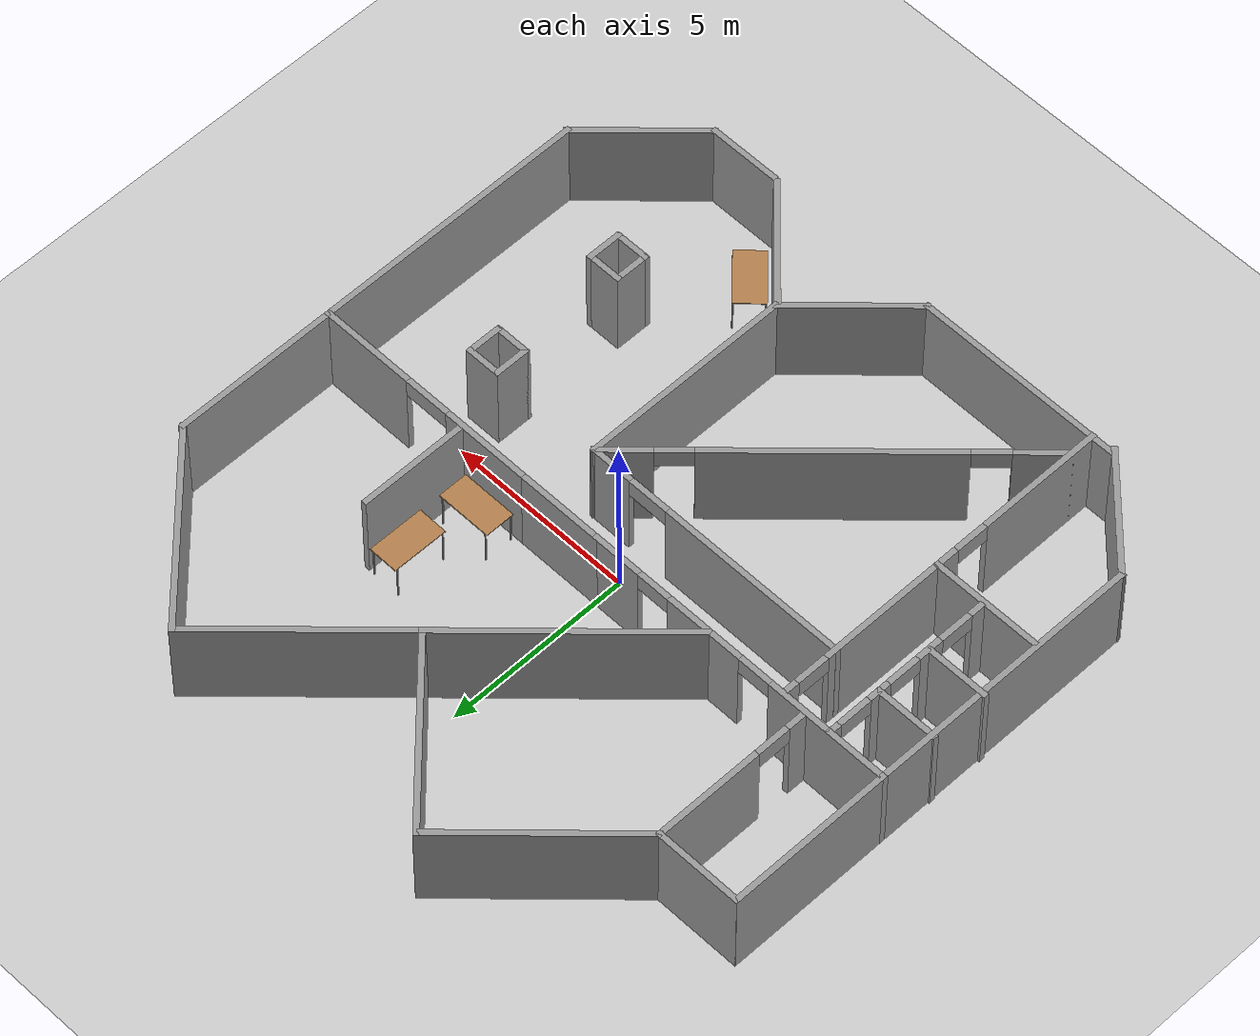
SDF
<sdf version="1.7">
 <world name="default">
  <light name="sun" type="directional">
   <pose>0 0 10 0 -0 0</pose>
   <diffuse>0.8 0.8 0.8 1</diffuse>
   <specular>0.2 0.2 0.2 1</specular>
   <attenuation>
    <range>1000</range>
    <constant>0.9</constant>
    <linear>0.01</linear>
    <quadratic>0.001</quadratic>
   </attenuation>
   <direction>-0.5 0.1 -0.9</direction>
   <spot><inner_angle>0</inner_angle><outer_angle>0</outer_angle><falloff>0</falloff></spot>
  </light>
  <model name="ground_plane">
   <static>1</static>
   <link name="link">
    <collision name="collision">
     <geometry><plane><normal>0 0 1</normal><size>100 100</size></plane></geometry>
     <surface><friction><ode><mu>100</mu><mu2>50</mu2></ode></friction></surface>
    </collision>
    <visual name="visual">
     <cast_shadows>0</cast_shadows>
     <geometry><plane><normal>0 0 1</normal><size>100 100</size></plane></geometry>
     <material>
      <script><uri>file://media/materials/scripts/gazebo.material</uri><name>Gazebo/Grey</name></script>
     </material>
    </visual>
   </link>
  </model>
  <gravity>0 0 -9.8</gravity>
  <magnetic_field>6e-06 2.3e-05 -4.2e-05</magnetic_field>
  <atmosphere type="adiabatic"/>
  <physics name="default_physics" default="0" type="ode">
   <max_step_size>0.001</max_step_size>
   <real_time_factor>1</real_time_factor>
   <real_time_update_rate>1000</real_time_update_rate>
  </physics>
  <scene><ambient>0.4 0.4 0.4 1</ambient><background>0.7 0.7 0.7 1</background><shadows>1</shadows></scene>
  <spherical_coordinates>
   <surface_model>EARTH_WGS84</surface_model>
   <latitude_deg>0</latitude_deg>
   <longitude_deg>0</longitude_deg>
   <elevation>0</elevation>
   <heading_deg>0</heading_deg>
  </spherical_coordinates>
  <model name="cafe">
   <pose>-0.092591 -0.090321 0 0 -0 0</pose>
   <link name="Wall_11">
    <collision name="Wall_11_Collision">
     <geometry><box><size>2.5 0.15 2.5</size></box></geometry>
     <pose>0 0 1.25 0 -0 0</pose>
    </collision>
    <visual name="Wall_11_Visual">
     <pose>0 0 1.25 0 -0 0</pose>
     <geometry><box><size>2.5 0.15 2.5</size></box></geometry>
     <material>
      <script><uri>file://media/materials/scripts/gazebo.material</uri><name>Gazebo/Grey</name></script>
      <ambient>1 1 1 1</ambient>
     </material>
     <meta><layer>0</layer></meta>
    </visual>
    <pose>1.25558 0.783489 0 0 -0 0</pose>
   </link>
   <link name="Wall_119">
    <collision name="Wall_119_Collision">
     <geometry><box><size>3 0.15 2.5</size></box></geometry>
     <pose>0 0 1.25 0 -0 0</pose>
    </collision>
    <visual name="Wall_119_Visual">
     <pose>0 0 1.25 0 -0 0</pose>
     <geometry><box><size>3 0.15 2.5</size></box></geometry>
     <material>
      <script><uri>file://media/materials/scripts/gazebo.material</uri><name>Gazebo/Grey</name></script>
      <ambient>1 1 1 1</ambient>
     </material>
     <meta><layer>0</layer></meta>
    </visual>
    <pose>4.25713 2.25122 0 0 -0 1.5708</pose>
   </link>
   <link name="Wall_128">
    <pose>-1.87981 -4.46955 0 0 -0 0.785398</pose>
    <visual name="Wall_128_Visual_0">
     <pose>-4.58152 0 1.25 0 -0 0</pose>
     <geometry><box><size>1.33695 0.15 2.5</size></box></geometry>
     <material>
      <script><uri>file://media/materials/scripts/gazebo.material</uri><name>Gazebo/Grey</name></script>
      <ambient>1 1 1 1</ambient>
     </material>
     <meta><layer>0</layer></meta>
    </visual>
    <collision name="Wall_128_Collision_0">
     <geometry><box><size>1.33695 0.15 2.5</size></box></geometry>
     <pose>-4.58152 0 1.25 0 -0 0</pose>
    </collision>
    <visual name="Wall_128_Visual_1">
     <pose>-0.010786 0 1.25 0 -0 0</pose>
     <geometry><box><size>6.00453 0.15 2.5</size></box></geometry>
     <material>
      <script><uri>file://media/materials/scripts/gazebo.material</uri><name>Gazebo/Grey</name></script>
      <ambient>1 1 1 1</ambient>
     </material>
     <meta><layer>0</layer></meta>
    </visual>
    <collision name="Wall_128_Collision_1">
     <geometry><box><size>6.00453 0.15 2.5</size></box></geometry>
     <pose>-0.010786 0 1.25 0 -0 0</pose>
    </collision>
    <visual name="Wall_128_Visual_2">
     <pose>4.57074 0 1.25 0 -0 0</pose>
     <geometry><box><size>1.35852 0.15 2.5</size></box></geometry>
     <material>
      <script><uri>file://media/materials/scripts/gazebo.material</uri><name>Gazebo/Grey</name></script>
      <ambient>1 1 1 1</ambient>
     </material>
     <meta><layer>0</layer></meta>
    </visual>
    <collision name="Wall_128_Collision_2">
     <geometry><box><size>1.35852 0.15 2.5</size></box></geometry>
     <pose>4.57074 0 1.25 0 -0 0</pose>
    </collision>
    <visual name="Wall_128_Visual_3">
     <pose>-3.46305 0 2.25 0 -0 0</pose>
     <geometry><box><size>0.9 0.15 0.5</size></box></geometry>
     <material>
      <script><uri>file://media/materials/scripts/gazebo.material</uri><name>Gazebo/Grey</name></script>
      <ambient>1 1 1 1</ambient>
     </material>
     <meta><layer>0</layer></meta>
    </visual>
    <collision name="Wall_128_Collision_3">
     <geometry><box><size>0.9 0.15 0.5</size></box></geometry>
     <pose>-3.46305 0 2.25 0 -0 0</pose>
    </collision>
    <visual name="Wall_128_Visual_4">
     <pose>3.44148 0 2.25 0 -0 0</pose>
     <geometry><box><size>0.9 0.15 0.5</size></box></geometry>
     <material>
      <script><uri>file://media/materials/scripts/gazebo.material</uri><name>Gazebo/Grey</name></script>
      <ambient>1 1 1 1</ambient>
     </material>
     <meta><layer>0</layer></meta>
    </visual>
    <collision name="Wall_128_Collision_4">
     <geometry><box><size>0.9 0.15 0.5</size></box></geometry>
     <pose>3.44148 0 2.25 0 -0 0</pose>
    </collision>
   </link>
   <link name="Wall_130">
    <collision name="Wall_130_Collision">
     <geometry><box><size>3.5 0.15 2.5</size></box></geometry>
     <pose>0 0 1.25 0 -0 0</pose>
    </collision>
    <visual name="Wall_130_Visual">
     <pose>0 0 1.25 0 -0 0</pose>
     <geometry><box><size>3.5 0.15 2.5</size></box></geometry>
     <material>
      <script><uri>file://media/materials/scripts/gazebo.material</uri><name>Gazebo/Grey</name></script>
      <ambient>1 1 1 1</ambient>
     </material>
     <meta><layer>0</layer></meta>
    </visual>
    <pose>3.00517 -7.68839 0 0 -0 2.35619</pose>
   </link>
   <link name="Wall_132">
    <pose>-1.89553 -0.810269 0 0 -0 3.14159</pose>
    <visual name="Wall_132_Visual_0">
     <pose>-3.14145 0 1.25 0 -0 0</pose>
     <geometry><box><size>1.2171 0.15 2.5</size></box></geometry>
     <material>
      <script><uri>file://media/materials/scripts/gazebo.material</uri><name>Gazebo/Grey</name></script>
      <ambient>1 1 1 1</ambient>
     </material>
     <meta><layer>0</layer></meta>
    </visual>
    <collision name="Wall_132_Collision_0">
     <geometry><box><size>1.2171 0.15 2.5</size></box></geometry>
     <pose>-3.14145 0 1.25 0 -0 0</pose>
    </collision>
    <visual name="Wall_132_Visual_1">
     <pose>1.17227 0 1.25 0 -0 0</pose>
     <geometry><box><size>5.15545 0.15 2.5</size></box></geometry>
     <material>
      <script><uri>file://media/materials/scripts/gazebo.material</uri><name>Gazebo/Grey</name></script>
      <ambient>1 1 1 1</ambient>
     </material>
     <meta><layer>0</layer></meta>
    </visual>
    <collision name="Wall_132_Collision_1">
     <geometry><box><size>5.15545 0.15 2.5</size></box></geometry>
     <pose>1.17227 0 1.25 0 -0 0</pose>
    </collision>
    <visual name="Wall_132_Visual_2">
     <pose>-1.96918 0 2.25 0 -0 0</pose>
     <geometry><box><size>1.12745 0.15 0.5</size></box></geometry>
     <material>
      <script><uri>file://media/materials/scripts/gazebo.material</uri><name>Gazebo/Grey</name></script>
      <ambient>1 1 1 1</ambient>
     </material>
     <meta><layer>0</layer></meta>
    </visual>
    <collision name="Wall_132_Collision_2">
     <geometry><box><size>1.12745 0.15 0.5</size></box></geometry>
     <pose>-1.96918 0 2.25 0 -0 0</pose>
    </collision>
   </link>
   <link name="Wall_145">
    <collision name="Wall_145_Collision">
     <geometry><box><size>6.25 0.15 2.5</size></box></geometry>
     <pose>0 0 1.25 0 -0 0</pose>
    </collision>
    <visual name="Wall_145_Visual">
     <pose>0 0 1.25 0 -0 0</pose>
     <geometry><box><size>6.25 0.15 2.5</size></box></geometry>
     <material>
      <script><uri>file://media/materials/scripts/gazebo.material</uri><name>Gazebo/Grey</name></script>
      <ambient>1 1 1 1</ambient>
     </material>
     <meta><layer>0</layer></meta>
    </visual>
    <pose>-1.19214 2.97681 0 0 -0 -2.35619</pose>
   </link>
   <link name="Wall_152">
    <collision name="Wall_152_Collision">
     <geometry><box><size>1 0.15 2.5</size></box></geometry>
     <pose>0 0 1.25 0 -0 0</pose>
    </collision>
    <visual name="Wall_152_Visual">
     <pose>0 0 1.25 0 -0 0</pose>
     <geometry><box><size>1 0.15 2.5</size></box></geometry>
     <material>
      <script><uri>file://media/materials/scripts/gazebo.material</uri><name>Gazebo/Grey</name></script>
      <ambient>1 1 1 1</ambient>
     </material>
     <meta><layer>0</layer></meta>
    </visual>
    <pose>5.17985 -0.740216 0 0 -0 0</pose>
   </link>
   <link name="Wall_153">
    <collision name="Wall_153_Collision">
     <geometry><box><size>1 0.15 2.5</size></box></geometry>
     <pose>0 0 1.25 0 -0 0</pose>
    </collision>
    <visual name="Wall_153_Visual">
     <pose>0 0 1.25 0 -0 0</pose>
     <geometry><box><size>1 0.15 2.5</size></box></geometry>
     <material>
      <script><uri>file://media/materials/scripts/gazebo.material</uri><name>Gazebo/Grey</name></script>
      <ambient>1 1 1 1</ambient>
     </material>
     <meta><layer>0</layer></meta>
    </visual>
    <pose>5.60485 -1.16522 0 0 -0 -1.5708</pose>
   </link>
   <link name="Wall_154">
    <collision name="Wall_154_Collision">
     <geometry><box><size>1 0.15 2.5</size></box></geometry>
     <pose>0 0 1.25 0 -0 0</pose>
    </collision>
    <visual name="Wall_154_Visual">
     <pose>0 0 1.25 0 -0 0</pose>
     <geometry><box><size>1 0.15 2.5</size></box></geometry>
     <material>
      <script><uri>file://media/materials/scripts/gazebo.material</uri><name>Gazebo/Grey</name></script>
      <ambient>1 1 1 1</ambient>
     </material>
     <meta><layer>0</layer></meta>
    </visual>
    <pose>5.17985 -1.59022 0 0 -0 3.14159</pose>
   </link>
   <link name="Wall_155">
    <collision name="Wall_155_Collision">
     <geometry><box><size>1 0.15 2.5</size></box></geometry>
     <pose>0 0 1.25 0 -0 0</pose>
    </collision>
    <visual name="Wall_155_Visual">
     <pose>0 0 1.25 0 -0 0</pose>
     <geometry><box><size>1 0.15 2.5</size></box></geometry>
     <material>
      <script><uri>file://media/materials/scripts/gazebo.material</uri><name>Gazebo/Grey</name></script>
      <ambient>1 1 1 1</ambient>
     </material>
     <meta><layer>0</layer></meta>
    </visual>
    <pose>4.75485 -1.16522 0 0 -0 1.5708</pose>
   </link>
   <link name="Wall_159">
    <collision name="Wall_159_Collision">
     <geometry><box><size>1 0.15 2.5</size></box></geometry>
     <pose>0 0 1.25 0 -0 0</pose>
    </collision>
    <visual name="Wall_159_Visual">
     <pose>0 0 1.25 0 -0 0</pose>
     <geometry><box><size>1 0.15 2.5</size></box></geometry>
     <material>
      <script><uri>file://media/materials/scripts/gazebo.material</uri><name>Gazebo/Grey</name></script>
      <ambient>1 1 1 1</ambient>
     </material>
     <meta><layer>0</layer></meta>
    </visual>
    <pose>5.17985 -4.44022 0 0 -0 0</pose>
   </link>
   <link name="Wall_160">
    <collision name="Wall_160_Collision">
     <geometry><box><size>1 0.15 2.5</size></box></geometry>
     <pose>0 0 1.25 0 -0 0</pose>
    </collision>
    <visual name="Wall_160_Visual">
     <pose>0 0 1.25 0 -0 0</pose>
     <geometry><box><size>1 0.15 2.5</size></box></geometry>
     <material>
      <script><uri>file://media/materials/scripts/gazebo.material</uri><name>Gazebo/Grey</name></script>
      <ambient>1 1 1 1</ambient>
     </material>
     <meta><layer>0</layer></meta>
    </visual>
    <pose>5.60485 -4.86522 0 0 -0 -1.5708</pose>
   </link>
   <link name="Wall_161">
    <collision name="Wall_161_Collision">
     <geometry><box><size>1 0.15 2.5</size></box></geometry>
     <pose>0 0 1.25 0 -0 0</pose>
    </collision>
    <visual name="Wall_161_Visual">
     <pose>0 0 1.25 0 -0 0</pose>
     <geometry><box><size>1 0.15 2.5</size></box></geometry>
     <material>
      <script><uri>file://media/materials/scripts/gazebo.material</uri><name>Gazebo/Grey</name></script>
      <ambient>1 1 1 1</ambient>
     </material>
     <meta><layer>0</layer></meta>
    </visual>
    <pose>5.17985 -5.29022 0 0 -0 3.14159</pose>
   </link>
   <link name="Wall_162">
    <collision name="Wall_162_Collision">
     <geometry><box><size>1 0.15 2.5</size></box></geometry>
     <pose>0 0 1.25 0 -0 0</pose>
    </collision>
    <visual name="Wall_162_Visual">
     <pose>0 0 1.25 0 -0 0</pose>
     <geometry><box><size>1 0.15 2.5</size></box></geometry>
     <material>
      <script><uri>file://media/materials/scripts/gazebo.material</uri><name>Gazebo/Grey</name></script>
      <ambient>1 1 1 1</ambient>
     </material>
     <meta><layer>0</layer></meta>
    </visual>
    <pose>4.75485 -4.86522 0 0 -0 1.5708</pose>
   </link>
   <link name="Wall_164">
    <collision name="Wall_164_Collision">
     <geometry><box><size>5.75 0.15 2.5</size></box></geometry>
     <pose>0 0 1.25 0 -0 0</pose>
    </collision>
    <visual name="Wall_164_Visual">
     <pose>0 0 1.25 0 -0 0</pose>
     <geometry><box><size>5.75 0.15 2.5</size></box></geometry>
     <material>
      <script><uri>file://media/materials/scripts/gazebo.material</uri><name>Gazebo/Grey</name></script>
      <ambient>1 1 1 1</ambient>
     </material>
     <meta><layer>0</layer></meta>
    </visual>
    <pose>1.77947 -3.61027 0 0 -0 -1.5708</pose>
   </link>
   <link name="Wall_167">
    <pose>-6.95285 -1.53614 0 0 -0 -1.5708</pose>
    <visual name="Wall_167_Visual_0">
     <pose>-2.20497 0 1.25 0 -0 0</pose>
     <geometry><box><size>0.340063 0.15 2.5</size></box></geometry>
     <material>
      <script><uri>file://media/materials/scripts/gazebo.material</uri><name>Gazebo/Grey</name></script>
      <ambient>1 1 1 1</ambient>
     </material>
     <meta><layer>0</layer></meta>
    </visual>
    <collision name="Wall_167_Collision_0">
     <geometry><box><size>0.340063 0.15 2.5</size></box></geometry>
     <pose>-2.20497 0 1.25 0 -0 0</pose>
    </collision>
    <visual name="Wall_167_Visual_1">
     <pose>-0.835902 0 1.25 0 -0 0</pose>
     <geometry><box><size>0.59807 0.15 2.5</size></box></geometry>
     <material>
      <script><uri>file://media/materials/scripts/gazebo.material</uri><name>Gazebo/Grey</name></script>
      <ambient>1 1 1 1</ambient>
     </material>
     <meta><layer>0</layer></meta>
    </visual>
    <collision name="Wall_167_Collision_1">
     <geometry><box><size>0.59807 0.15 2.5</size></box></geometry>
     <pose>-0.835902 0 1.25 0 -0 0</pose>
    </collision>
    <visual name="Wall_167_Visual_2">
     <pose>0.709726 0 1.25 0 -0 0</pose>
     <geometry><box><size>0.693186 0.15 2.5</size></box></geometry>
     <material>
      <script><uri>file://media/materials/scripts/gazebo.material</uri><name>Gazebo/Grey</name></script>
      <ambient>1 1 1 1</ambient>
     </material>
     <meta><layer>0</layer></meta>
    </visual>
    <collision name="Wall_167_Collision_2">
     <geometry><box><size>0.693186 0.15 2.5</size></box></geometry>
     <pose>0.709726 0 1.25 0 -0 0</pose>
    </collision>
    <visual name="Wall_167_Visual_3">
     <pose>2.16566 0 1.25 0 -0 0</pose>
     <geometry><box><size>0.418681 0.15 2.5</size></box></geometry>
     <material>
      <script><uri>file://media/materials/scripts/gazebo.material</uri><name>Gazebo/Grey</name></script>
      <ambient>1 1 1 1</ambient>
     </material>
     <meta><layer>0</layer></meta>
    </visual>
    <collision name="Wall_167_Collision_3">
     <geometry><box><size>0.418681 0.15 2.5</size></box></geometry>
     <pose>2.16566 0 1.25 0 -0 0</pose>
    </collision>
    <visual name="Wall_167_Visual_4">
     <pose>-1.58494 0 2.25 0 -0 0</pose>
     <geometry><box><size>0.9 0.15 0.5</size></box></geometry>
     <material>
      <script><uri>file://media/materials/scripts/gazebo.material</uri><name>Gazebo/Grey</name></script>
      <ambient>1 1 1 1</ambient>
     </material>
     <meta><layer>0</layer></meta>
    </visual>
    <collision name="Wall_167_Collision_4">
     <geometry><box><size>0.9 0.15 0.5</size></box></geometry>
     <pose>-1.58494 0 2.25 0 -0 0</pose>
    </collision>
    <visual name="Wall_167_Visual_5">
     <pose>-0.086867 0 2.25 0 -0 0</pose>
     <geometry><box><size>0.9 0.15 0.5</size></box></geometry>
     <material>
      <script><uri>file://media/materials/scripts/gazebo.material</uri><name>Gazebo/Grey</name></script>
      <ambient>1 1 1 1</ambient>
     </material>
     <meta><layer>0</layer></meta>
    </visual>
    <collision name="Wall_167_Collision_5">
     <geometry><box><size>0.9 0.15 0.5</size></box></geometry>
     <pose>-0.086867 0 2.25 0 -0 0</pose>
    </collision>
    <visual name="Wall_167_Visual_6">
     <pose>1.50632 0 2.25 0 -0 0</pose>
     <geometry><box><size>0.9 0.15 0.5</size></box></geometry>
     <material>
      <script><uri>file://media/materials/scripts/gazebo.material</uri><name>Gazebo/Grey</name></script>
      <ambient>1 1 1 1</ambient>
     </material>
     <meta><layer>0</layer></meta>
    </visual>
    <collision name="Wall_167_Collision_6">
     <geometry><box><size>0.9 0.15 0.5</size></box></geometry>
     <pose>1.50632 0 2.25 0 -0 0</pose>
    </collision>
   </link>
   <link name="Wall_173">
    <collision name="Wall_173_Collision">
     <geometry><box><size>1.75 0.15 2.5</size></box></geometry>
     <pose>0 0 1.25 0 -0 0</pose>
    </collision>
    <visual name="Wall_173_Visual">
     <pose>0 0 1.25 0 -0 0</pose>
     <geometry><box><size>1.75 0.15 2.5</size></box></geometry>
     <material>
      <script><uri>file://media/materials/scripts/gazebo.material</uri><name>Gazebo/Grey</name></script>
      <ambient>1 1 1 1</ambient>
     </material>
     <meta><layer>0</layer></meta>
    </visual>
    <pose>-7.75668 -0.712123 0 0 -0 3.14159</pose>
   </link>
   <link name="Wall_175">
    <collision name="Wall_175_Collision">
     <geometry><box><size>1.75 0.15 2.5</size></box></geometry>
     <pose>0 0 1.25 0 -0 0</pose>
    </collision>
    <visual name="Wall_175_Visual">
     <pose>0 0 1.25 0 -0 0</pose>
     <geometry><box><size>1.75 0.15 2.5</size></box></geometry>
     <material>
      <script><uri>file://media/materials/scripts/gazebo.material</uri><name>Gazebo/Grey</name></script>
      <ambient>1 1 1 1</ambient>
     </material>
     <meta><layer>0</layer></meta>
    </visual>
    <pose>-7.78046 -2.23397 0 0 -0 3.14159</pose>
   </link>
   <link name="Wall_177">
    <collision name="Wall_177_Collision">
     <geometry><box><size>3.5 0.15 2.5</size></box></geometry>
     <pose>0 0 1.25 0 -0 0</pose>
    </collision>
    <visual name="Wall_177_Visual">
     <pose>0 0 1.25 0 -0 0</pose>
     <geometry><box><size>3.5 0.15 2.5</size></box></geometry>
     <material>
      <script><uri>file://media/materials/scripts/gazebo.material</uri><name>Gazebo/Grey</name></script>
      <ambient>1 1 1 1</ambient>
     </material>
     <meta><layer>0</layer></meta>
    </visual>
    <pose>0.595066 -7.59467 0 0 -0 -2.35619</pose>
   </link>
   <link name="Wall_181">
    <collision name="Wall_181_Collision">
     <geometry><box><size>2 0.15 2.5</size></box></geometry>
     <pose>0 0 1.25 0 -0 0</pose>
    </collision>
    <visual name="Wall_181_Visual">
     <pose>0 0 1.25 0 -0 0</pose>
     <geometry><box><size>2 0.15 2.5</size></box></geometry>
     <material>
      <script><uri>file://media/materials/scripts/gazebo.material</uri><name>Gazebo/Grey</name></script>
      <ambient>1 1 1 1</ambient>
     </material>
     <meta><layer>0</layer></meta>
    </visual>
    <pose>5.25558 -8.91651 0 0 -0 3.14159</pose>
   </link>
   <link name="Wall_184">
    <collision name="Wall_184_Collision">
     <geometry><box><size>5.75 0.15 2.5</size></box></geometry>
     <pose>0 0 1.25 0 -0 0</pose>
    </collision>
    <visual name="Wall_184_Visual">
     <pose>0 0 1.25 0 -0 0</pose>
     <geometry><box><size>5.75 0.15 2.5</size></box></geometry>
     <material>
      <script><uri>file://media/materials/scripts/gazebo.material</uri><name>Gazebo/Grey</name></script>
      <ambient>1 1 1 1</ambient>
     </material>
     <meta><layer>0</layer></meta>
    </visual>
    <pose>-3.38934 -8.77908 0 0 -0 3.14159</pose>
   </link>
   <link name="Wall_19">
    <pose>5.48058 0.783489 0 0 -0 0</pose>
    <visual name="Wall_19_Visual_0">
     <pose>-1.93695 0 1.25 0 -0 0</pose>
     <geometry><box><size>2.3761 0.15 2.5</size></box></geometry>
     <material>
      <script><uri>file://media/materials/scripts/gazebo.material</uri><name>Gazebo/Grey</name></script>
      <ambient>1 1 1 1</ambient>
     </material>
     <meta><layer>0</layer></meta>
    </visual>
    <collision name="Wall_19_Collision_0">
     <geometry><box><size>2.3761 0.15 2.5</size></box></geometry>
     <pose>-1.93695 0 1.25 0 -0 0</pose>
    </collision>
    <visual name="Wall_19_Visual_1">
     <pose>1.81101 0 1.25 0 -0 0</pose>
     <geometry><box><size>2.62798 0.15 2.5</size></box></geometry>
     <material>
      <script><uri>file://media/materials/scripts/gazebo.material</uri><name>Gazebo/Grey</name></script>
      <ambient>1 1 1 1</ambient>
     </material>
     <meta><layer>0</layer></meta>
    </visual>
    <collision name="Wall_19_Collision_1">
     <geometry><box><size>2.62798 0.15 2.5</size></box></geometry>
     <pose>1.81101 0 1.25 0 -0 0</pose>
    </collision>
    <visual name="Wall_19_Visual_2">
     <pose>-0.125942 0 2.25 0 -0 0</pose>
     <geometry><box><size>1.24592 0.15 0.5</size></box></geometry>
     <material>
      <script><uri>file://media/materials/scripts/gazebo.material</uri><name>Gazebo/Grey</name></script>
      <ambient>1 1 1 1</ambient>
     </material>
     <meta><layer>0</layer></meta>
    </visual>
    <collision name="Wall_19_Collision_2">
     <geometry><box><size>1.24592 0.15 0.5</size></box></geometry>
     <pose>-0.125942 0 2.25 0 -0 0</pose>
    </collision>
   </link>
   <link name="Wall_20">
    <collision name="Wall_20_Collision">
     <geometry><box><size>4.5 0.15 2.5</size></box></geometry>
     <pose>0 0 1.25 0 -0 0</pose>
    </collision>
    <visual name="Wall_20_Visual">
     <pose>0 0 1.25 0 -0 0</pose>
     <geometry><box><size>4.5 0.15 2.5</size></box></geometry>
     <material>
      <script><uri>file://media/materials/scripts/gazebo.material</uri><name>Gazebo/Grey</name></script>
      <ambient>1 1 1 1</ambient>
     </material>
     <meta><layer>0</layer></meta>
    </visual>
    <pose>8.53058 2.95849 0 0 -0 1.5708</pose>
   </link>
   <link name="Wall_22">
    <pose>-4.21942 0.783489 0 0 -0 3.14159</pose>
    <visual name="Wall_22_Visual_0">
     <pose>-3.6774 0 1.25 0 -0 0</pose>
     <geometry><box><size>1.3952 0.15 2.5</size></box></geometry>
     <material>
      <script><uri>file://media/materials/scripts/gazebo.material</uri><name>Gazebo/Grey</name></script>
      <ambient>1 1 1 1</ambient>
     </material>
     <meta><layer>0</layer></meta>
    </visual>
    <collision name="Wall_22_Collision_0">
     <geometry><box><size>1.3952 0.15 2.5</size></box></geometry>
     <pose>-3.6774 0 1.25 0 -0 0</pose>
    </collision>
    <visual name="Wall_22_Visual_1">
     <pose>-1.00095 0 1.25 0 -0 0</pose>
     <geometry><box><size>2.15769 0.15 2.5</size></box></geometry>
     <material>
      <script><uri>file://media/materials/scripts/gazebo.material</uri><name>Gazebo/Grey</name></script>
      <ambient>1 1 1 1</ambient>
     </material>
     <meta><layer>0</layer></meta>
    </visual>
    <collision name="Wall_22_Collision_1">
     <geometry><box><size>2.15769 0.15 2.5</size></box></geometry>
     <pose>-1.00095 0 1.25 0 -0 0</pose>
    </collision>
    <visual name="Wall_22_Visual_2">
     <pose>2.67645 0 1.25 0 -0 0</pose>
     <geometry><box><size>3.39711 0.15 2.5</size></box></geometry>
     <material>
      <script><uri>file://media/materials/scripts/gazebo.material</uri><name>Gazebo/Grey</name></script>
      <ambient>1 1 1 1</ambient>
     </material>
     <meta><layer>0</layer></meta>
    </visual>
    <collision name="Wall_22_Collision_2">
     <geometry><box><size>3.39711 0.15 2.5</size></box></geometry>
     <pose>2.67645 0 1.25 0 -0 0</pose>
    </collision>
    <visual name="Wall_22_Visual_3">
     <pose>-2.5298 0 2.25 0 -0 0</pose>
     <geometry><box><size>0.9 0.15 0.5</size></box></geometry>
     <material>
      <script><uri>file://media/materials/scripts/gazebo.material</uri><name>Gazebo/Grey</name></script>
      <ambient>1 1 1 1</ambient>
     </material>
     <meta><layer>0</layer></meta>
    </visual>
    <collision name="Wall_22_Collision_3">
     <geometry><box><size>0.9 0.15 0.5</size></box></geometry>
     <pose>-2.5298 0 2.25 0 -0 0</pose>
    </collision>
    <visual name="Wall_22_Visual_4">
     <pose>0.527894 0 2.25 0 -0 0</pose>
     <geometry><box><size>0.9 0.15 0.5</size></box></geometry>
     <material>
      <script><uri>file://media/materials/scripts/gazebo.material</uri><name>Gazebo/Grey</name></script>
      <ambient>1 1 1 1</ambient>
     </material>
     <meta><layer>0</layer></meta>
    </visual>
    <collision name="Wall_22_Collision_4">
     <geometry><box><size>0.9 0.15 0.5</size></box></geometry>
     <pose>0.527894 0 2.25 0 -0 0</pose>
    </collision>
   </link>
   <link name="Wall_23">
    <collision name="Wall_23_Collision">
     <geometry><box><size>4.5 0.15 2.5</size></box></geometry>
     <pose>0 0 1.25 0 -0 0</pose>
    </collision>
    <visual name="Wall_23_Visual">
     <pose>0 0 1.25 0 -0 0</pose>
     <geometry><box><size>4.5 0.15 2.5</size></box></geometry>
     <material>
      <script><uri>file://media/materials/scripts/gazebo.material</uri><name>Gazebo/Grey</name></script>
      <ambient>1 1 1 1</ambient>
     </material>
     <meta><layer>0</layer></meta>
    </visual>
    <pose>-8.51942 2.95849 0 0 -0 1.5708</pose>
   </link>
   <link name="Wall_30">
    <collision name="Wall_30_Collision">
     <geometry><box><size>5.5 0.15 2.5</size></box></geometry>
     <pose>0 0 1.25 0 -0 0</pose>
    </collision>
    <visual name="Wall_30_Visual">
     <pose>0 0 1.25 0 -0 0</pose>
     <geometry><box><size>5.5 0.15 2.5</size></box></geometry>
     <material>
      <script><uri>file://media/materials/scripts/gazebo.material</uri><name>Gazebo/Grey</name></script>
      <ambient>1 1 1 1</ambient>
     </material>
     <meta><layer>0</layer></meta>
    </visual>
    <pose>6.63907 7.025 0 0 -0 2.35619</pose>
   </link>
   <link name="Wall_31">
    <collision name="Wall_31_Collision">
     <geometry><box><size>5.5 0.15 2.5</size></box></geometry>
     <pose>0 0 1.25 0 -0 0</pose>
    </collision>
    <visual name="Wall_31_Visual">
     <pose>0 0 1.25 0 -0 0</pose>
     <geometry><box><size>5.5 0.15 2.5</size></box></geometry>
     <material>
      <script><uri>file://media/materials/scripts/gazebo.material</uri><name>Gazebo/Grey</name></script>
      <ambient>1 1 1 1</ambient>
     </material>
     <meta><layer>0</layer></meta>
    </visual>
    <pose>2.85605 7.025 0 0 -0 -2.35619</pose>
   </link>
   <link name="Wall_33">
    <collision name="Wall_33_Collision">
     <geometry><box><size>5.25 0.15 2.5</size></box></geometry>
     <pose>0 0 1.25 0 -0 0</pose>
    </collision>
    <visual name="Wall_33_Visual">
     <pose>0 0 1.25 0 -0 0</pose>
     <geometry><box><size>5.25 0.15 2.5</size></box></geometry>
     <material>
      <script><uri>file://media/materials/scripts/gazebo.material</uri><name>Gazebo/Grey</name></script>
      <ambient>1 1 1 1</ambient>
     </material>
     <meta><layer>0</layer></meta>
    </visual>
    <pose>-0.838583 6.93661 0 0 -0 2.35619</pose>
   </link>
   <link name="Wall_34">
    <collision name="Wall_34_Collision">
     <geometry><box><size>5.25 0.15 2.5</size></box></geometry>
     <pose>0 0 1.25 0 -0 0</pose>
    </collision>
    <visual name="Wall_34_Visual">
     <pose>0 0 1.25 0 -0 0</pose>
     <geometry><box><size>5.25 0.15 2.5</size></box></geometry>
     <material>
      <script><uri>file://media/materials/scripts/gazebo.material</uri><name>Gazebo/Grey</name></script>
      <ambient>1 1 1 1</ambient>
     </material>
     <meta><layer>0</layer></meta>
    </visual>
    <pose>-4.44483 6.93661 0 0 -0 -2.35619</pose>
   </link>
   <link name="Wall_39">
    <collision name="Wall_39_Collision">
     <geometry><box><size>2.42147 0.15 2.5</size></box></geometry>
     <pose>0 0 1.25 0 -0 0</pose>
    </collision>
    <visual name="Wall_39_Visual">
     <pose>0 0 1.25 0 -0 0</pose>
     <geometry><box><size>2.42147 0.15 2.5</size></box></geometry>
     <material>
      <script><uri>file://media/materials/scripts/gazebo.material</uri><name>Gazebo/Grey</name></script>
      <ambient>1 1 1 1</ambient>
     </material>
     <meta><layer>0</layer></meta>
    </visual>
    <pose>-7.38368 5.13349 0 0 -0 -3.14159</pose>
   </link>
   <link name="Wall_42">
    <pose>-6.24795 2.95849 0 0 -0 -1.5708</pose>
    <visual name="Wall_42_Visual_0">
     <pose>-0.769363 0 1.25 0 -0 0</pose>
     <geometry><box><size>2.96127 0.15 2.5</size></box></geometry>
     <material>
      <script><uri>file://media/materials/scripts/gazebo.material</uri><name>Gazebo/Grey</name></script>
      <ambient>1 1 1 1</ambient>
     </material>
     <meta><layer>0</layer></meta>
    </visual>
    <collision name="Wall_42_Collision_0">
     <geometry><box><size>2.96127 0.15 2.5</size></box></geometry>
     <pose>-0.769363 0 1.25 0 -0 0</pose>
    </collision>
    <visual name="Wall_42_Visual_1">
     <pose>1.93064 0 1.25 0 -0 0</pose>
     <geometry><box><size>0.638726 0.15 2.5</size></box></geometry>
     <material>
      <script><uri>file://media/materials/scripts/gazebo.material</uri><name>Gazebo/Grey</name></script>
      <ambient>1 1 1 1</ambient>
     </material>
     <meta><layer>0</layer></meta>
    </visual>
    <collision name="Wall_42_Collision_1">
     <geometry><box><size>0.638726 0.15 2.5</size></box></geometry>
     <pose>1.93064 0 1.25 0 -0 0</pose>
    </collision>
    <visual name="Wall_42_Visual_2">
     <pose>1.16127 0 2.25 0 -0 0</pose>
     <geometry><box><size>0.9 0.15 0.5</size></box></geometry>
     <material>
      <script><uri>file://media/materials/scripts/gazebo.material</uri><name>Gazebo/Grey</name></script>
      <ambient>1 1 1 1</ambient>
     </material>
     <meta><layer>0</layer></meta>
    </visual>
    <collision name="Wall_42_Collision_2">
     <geometry><box><size>0.9 0.15 0.5</size></box></geometry>
     <pose>1.16127 0 2.25 0 -0 0</pose>
    </collision>
   </link>
   <link name="Wall_44">
    <collision name="Wall_44_Collision">
     <geometry><box><size>7.5 0.15 2.5</size></box></geometry>
     <pose>0 0 1.25 0 -0 0</pose>
    </collision>
    <visual name="Wall_44_Visual">
     <pose>0 0 1.25 0 -0 0</pose>
     <geometry><box><size>7.5 0.15 2.5</size></box></geometry>
     <material>
      <script><uri>file://media/materials/scripts/gazebo.material</uri><name>Gazebo/Grey</name></script>
      <ambient>1 1 1 1</ambient>
     </material>
     <meta><layer>0</layer></meta>
    </visual>
    <pose>-8.51942 -2.89151 0 0 -0 -1.5708</pose>
   </link>
   <link name="Wall_47">
    <collision name="Wall_47_Collision">
     <geometry><box><size>7.5 0.15 2.5</size></box></geometry>
     <pose>0 0 1.25 0 -0 0</pose>
    </collision>
    <visual name="Wall_47_Visual">
     <pose>0 0 1.25 0 -0 0</pose>
     <geometry><box><size>7.5 0.15 2.5</size></box></geometry>
     <material>
      <script><uri>file://media/materials/scripts/gazebo.material</uri><name>Gazebo/Grey</name></script>
      <ambient>1 1 1 1</ambient>
     </material>
     <meta><layer>0</layer></meta>
    </visual>
    <pose>8.53058 -2.89151 0 0 -0 -1.5708</pose>
   </link>
   <link name="Wall_57">
    <collision name="Wall_57_Collision">
     <geometry><box><size>3.5 0.15 2.5</size></box></geometry>
     <pose>0 0 1.25 0 -0 0</pose>
    </collision>
    <visual name="Wall_57_Visual">
     <pose>0 0 1.25 0 -0 0</pose>
     <geometry><box><size>3.5 0.15 2.5</size></box></geometry>
     <material>
      <script><uri>file://media/materials/scripts/gazebo.material</uri><name>Gazebo/Grey</name></script>
      <ambient>1 1 1 1</ambient>
     </material>
     <meta><layer>0</layer></meta>
    </visual>
    <pose>7.36499 -7.73211 0 0 -0 0.785398</pose>
   </link>
   <link name="Wall_78">
    <collision name="Wall_78_Collision">
     <geometry><box><size>3.47821 0.15 2.5</size></box></geometry>
     <pose>0 0 1.25 0 -0 0</pose>
    </collision>
    <visual name="Wall_78_Visual">
     <pose>0 0 1.25 0 -0 0</pose>
     <geometry><box><size>3.47821 0.15 2.5</size></box></geometry>
     <material>
      <script><uri>file://media/materials/scripts/gazebo.material</uri><name>Gazebo/Grey</name></script>
      <ambient>1 1 1 1</ambient>
     </material>
     <meta><layer>0</layer></meta>
    </visual>
    <pose>-7.32759 -7.72788 0 0 -0 2.36914</pose>
   </link>
   <link name="Wall_82">
    <collision name="Wall_82_Collision">
     <geometry><box><size>3 0.15 2.5</size></box></geometry>
     <pose>0 0 1.25 0 -0 0</pose>
    </collision>
    <visual name="Wall_82_Visual">
     <pose>0 0 1.25 0 -0 0</pose>
     <geometry><box><size>3 0.15 2.5</size></box></geometry>
     <material>
      <script><uri>file://media/materials/scripts/gazebo.material</uri><name>Gazebo/Grey</name></script>
      <ambient>1 1 1 1</ambient>
     </material>
     <meta><layer>0</layer></meta>
    </visual>
    <pose>-6.99316 -3.94458 0 0 -0 0</pose>
   </link>
   <link name="Wall_84">
    <pose>-5.56816 -6.36958 0 0 -0 -1.5708</pose>
    <visual name="Wall_84_Visual_0">
     <pose>-2.17855 0 1.25 0 -0 0</pose>
     <geometry><box><size>0.642906 0.15 2.5</size></box></geometry>
     <material>
      <script><uri>file://media/materials/scripts/gazebo.material</uri><name>Gazebo/Grey</name></script>
      <ambient>1 1 1 1</ambient>
     </material>
     <meta><layer>0</layer></meta>
    </visual>
    <collision name="Wall_84_Collision_0">
     <geometry><box><size>0.642906 0.15 2.5</size></box></geometry>
     <pose>-2.17855 0 1.25 0 -0 0</pose>
    </collision>
    <visual name="Wall_84_Visual_1">
     <pose>0.771453 0 1.25 0 -0 0</pose>
     <geometry><box><size>3.45709 0.15 2.5</size></box></geometry>
     <material>
      <script><uri>file://media/materials/scripts/gazebo.material</uri><name>Gazebo/Grey</name></script>
      <ambient>1 1 1 1</ambient>
     </material>
     <meta><layer>0</layer></meta>
    </visual>
    <collision name="Wall_84_Collision_1">
     <geometry><box><size>3.45709 0.15 2.5</size></box></geometry>
     <pose>0.771453 0 1.25 0 -0 0</pose>
    </collision>
    <visual name="Wall_84_Visual_2">
     <pose>-1.40709 0 2.25 0 -0 0</pose>
     <geometry><box><size>0.9 0.15 0.5</size></box></geometry>
     <material>
      <script><uri>file://media/materials/scripts/gazebo.material</uri><name>Gazebo/Grey</name></script>
      <ambient>1 1 1 1</ambient>
     </material>
     <meta><layer>0</layer></meta>
    </visual>
    <collision name="Wall_84_Collision_2">
     <geometry><box><size>0.9 0.15 0.5</size></box></geometry>
     <pose>-1.40709 0 2.25 0 -0 0</pose>
    </collision>
   </link>
   <link name="Wall_86">
    <pose>-5.56816 -1.64458 0 0 -0 1.5708</pose>
    <visual name="Wall_86_Visual_0">
     <pose>-0.628681 0 1.25 0 -0 0</pose>
     <geometry><box><size>3.49264 0.15 2.5</size></box></geometry>
     <material>
      <script><uri>file://media/materials/scripts/gazebo.material</uri><name>Gazebo/Grey</name></script>
      <ambient>1 1 1 1</ambient>
     </material>
     <meta><layer>0</layer></meta>
    </visual>
    <collision name="Wall_86_Collision_0">
     <geometry><box><size>3.49264 0.15 2.5</size></box></geometry>
     <pose>-0.628681 0 1.25 0 -0 0</pose>
    </collision>
    <visual name="Wall_86_Visual_1">
     <pose>2.19632 0 1.25 0 -0 0</pose>
     <geometry><box><size>0.357362 0.15 2.5</size></box></geometry>
     <material>
      <script><uri>file://media/materials/scripts/gazebo.material</uri><name>Gazebo/Grey</name></script>
      <ambient>1 1 1 1</ambient>
     </material>
     <meta><layer>0</layer></meta>
    </visual>
    <collision name="Wall_86_Collision_1">
     <geometry><box><size>0.357362 0.15 2.5</size></box></geometry>
     <pose>2.19632 0 1.25 0 -0 0</pose>
    </collision>
    <visual name="Wall_86_Visual_2">
     <pose>1.56764 0 2.25 0 -0 0</pose>
     <geometry><box><size>0.9 0.15 0.5</size></box></geometry>
     <material>
      <script><uri>file://media/materials/scripts/gazebo.material</uri><name>Gazebo/Grey</name></script>
      <ambient>1 1 1 1</ambient>
     </material>
     <meta><layer>0</layer></meta>
    </visual>
    <collision name="Wall_86_Collision_2">
     <geometry><box><size>0.9 0.15 0.5</size></box></geometry>
     <pose>1.56764 0 2.25 0 -0 0</pose>
    </collision>
   </link>
   <static>1</static>
  </model>
  <model name="table">
   <static>1</static>
   <link name="link">
    <collision name="surface">
     <pose>0 0 1 0 -0 0</pose>
     <geometry><box><size>1.5 0.8 0.03</size></box></geometry>
     <surface><friction><ode><mu>0.6</mu><mu2>0.6</mu2></ode></friction></surface>
    </collision>
    <visual name="visual1">
     <pose>0 0 1 0 -0 0</pose>
     <geometry><box><size>1.5 0.8 0.03</size></box></geometry>
     <material>
      <script><uri>file://media/materials/scripts/gazebo.material</uri><name>Gazebo/Wood</name></script>
     </material>
    </visual>
    <collision name="front_left_leg">
     <pose>0.68 0.38 0.5 0 -0 0</pose>
     <geometry><cylinder><radius>0.02</radius><length>1</length></cylinder></geometry>
    </collision>
    <visual name="front_left_leg">
     <pose>0.68 0.38 0.5 0 -0 0</pose>
     <geometry><cylinder><radius>0.02</radius><length>1</length></cylinder></geometry>
     <material>
      <script><uri>file://media/materials/scripts/gazebo.material</uri><name>Gazebo/Grey</name></script>
     </material>
    </visual>
    <collision name="front_right_leg">
     <pose>0.68 -0.38 0.5 0 -0 0</pose>
     <geometry><cylinder><radius>0.02</radius><length>1</length></cylinder></geometry>
    </collision>
    <visual name="front_right_leg">
     <pose>0.68 -0.38 0.5 0 -0 0</pose>
     <geometry><cylinder><radius>0.02</radius><length>1</length></cylinder></geometry>
     <material>
      <script><uri>file://media/materials/scripts/gazebo.material</uri><name>Gazebo/Grey</name></script>
     </material>
    </visual>
    <collision name="back_right_leg">
     <pose>-0.68 -0.38 0.5 0 -0 0</pose>
     <geometry><cylinder><radius>0.02</radius><length>1</length></cylinder></geometry>
    </collision>
    <visual name="back_right_leg">
     <pose>-0.68 -0.38 0.5 0 -0 0</pose>
     <geometry><cylinder><radius>0.02</radius><length>1</length></cylinder></geometry>
     <material>
      <script><uri>file://media/materials/scripts/gazebo.material</uri><name>Gazebo/Grey</name></script>
     </material>
    </visual>
    <collision name="back_left_leg">
     <pose>-0.68 0.38 0.5 0 -0 0</pose>
     <geometry><cylinder><radius>0.02</radius><length>1</length></cylinder></geometry>
    </collision>
    <visual name="back_left_leg">
     <pose>-0.68 0.38 0.5 0 -0 0</pose>
     <geometry><cylinder><radius>0.02</radius><length>1</length></cylinder></geometry>
     <material>
      <script><uri>file://media/materials/scripts/gazebo.material</uri><name>Gazebo/Grey</name></script>
     </material>
    </visual>
   </link>
   <pose>3.19301 1.25131 0 0 -0 0</pose>
  </model>
  <model name="table_clone">
   <static>1</static>
   <link name="link">
    <collision name="surface">
     <pose>0 0 1 0 -0 0</pose>
     <geometry><box><size>1.5 0.8 0.03</size></box></geometry>
     <surface><friction><ode><mu>0.6</mu><mu2>0.6</mu2></ode></friction></surface>
    </collision>
    <visual name="visual1">
     <pose>0 0 1 0 -0 0</pose>
     <geometry><box><size>1.5 0.8 0.03</size></box></geometry>
     <material>
      <script><uri>file://media/materials/scripts/gazebo.material</uri><name>Gazebo/Wood</name></script>
     </material>
    </visual>
    <collision name="front_left_leg">
     <pose>0.68 0.38 0.5 0 -0 0</pose>
     <geometry><cylinder><radius>0.02</radius><length>1</length></cylinder></geometry>
    </collision>
    <visual name="front_left_leg">
     <pose>0.68 0.38 0.5 0 -0 0</pose>
     <geometry><cylinder><radius>0.02</radius><length>1</length></cylinder></geometry>
     <material>
      <script><uri>file://media/materials/scripts/gazebo.material</uri><name>Gazebo/Grey</name></script>
     </material>
    </visual>
    <collision name="front_right_leg">
     <pose>0.68 -0.38 0.5 0 -0 0</pose>
     <geometry><cylinder><radius>0.02</radius><length>1</length></cylinder></geometry>
    </collision>
    <visual name="front_right_leg">
     <pose>0.68 -0.38 0.5 0 -0 0</pose>
     <geometry><cylinder><radius>0.02</radius><length>1</length></cylinder></geometry>
     <material>
      <script><uri>file://media/materials/scripts/gazebo.material</uri><name>Gazebo/Grey</name></script>
     </material>
    </visual>
    <collision name="back_right_leg">
     <pose>-0.68 -0.38 0.5 0 -0 0</pose>
     <geometry><cylinder><radius>0.02</radius><length>1</length></cylinder></geometry>
    </collision>
    <visual name="back_right_leg">
     <pose>-0.68 -0.38 0.5 0 -0 0</pose>
     <geometry><cylinder><radius>0.02</radius><length>1</length></cylinder></geometry>
     <material>
      <script><uri>file://media/materials/scripts/gazebo.material</uri><name>Gazebo/Grey</name></script>
     </material>
    </visual>
    <collision name="back_left_leg">
     <pose>-0.68 0.38 0.5 0 -0 0</pose>
     <geometry><cylinder><radius>0.02</radius><length>1</length></cylinder></geometry>
    </collision>
    <visual name="back_left_leg">
     <pose>-0.68 0.38 0.5 0 -0 0</pose>
     <geometry><cylinder><radius>0.02</radius><length>1</length></cylinder></geometry>
     <material>
      <script><uri>file://media/materials/scripts/gazebo.material</uri><name>Gazebo/Grey</name></script>
     </material>
    </visual>
   </link>
   <pose>3.56018 2.96867 0 0 0 -1.57634</pose>
  </model>
  <model name="table_clone_clone">
   <static>1</static>
   <link name="link">
    <collision name="surface">
     <pose>0 0 1 0 -0 0</pose>
     <geometry><box><size>1.5 0.8 0.03</size></box></geometry>
     <surface><friction><ode><mu>0.6</mu><mu2>0.6</mu2></ode></friction></surface>
    </collision>
    <visual name="visual1">
     <pose>0 0 1 0 -0 0</pose>
     <geometry><box><size>1.5 0.8 0.03</size></box></geometry>
     <material>
      <script><uri>file://media/materials/scripts/gazebo.material</uri><name>Gazebo/Wood</name></script>
     </material>
    </visual>
    <collision name="front_left_leg">
     <pose>0.68 0.38 0.5 0 -0 0</pose>
     <geometry><cylinder><radius>0.02</radius><length>1</length></cylinder></geometry>
    </collision>
    <visual name="front_left_leg">
     <pose>0.68 0.38 0.5 0 -0 0</pose>
     <geometry><cylinder><radius>0.02</radius><length>1</length></cylinder></geometry>
     <material>
      <script><uri>file://media/materials/scripts/gazebo.material</uri><name>Gazebo/Grey</name></script>
     </material>
    </visual>
    <collision name="front_right_leg">
     <pose>0.68 -0.38 0.5 0 -0 0</pose>
     <geometry><cylinder><radius>0.02</radius><length>1</length></cylinder></geometry>
    </collision>
    <visual name="front_right_leg">
     <pose>0.68 -0.38 0.5 0 -0 0</pose>
     <geometry><cylinder><radius>0.02</radius><length>1</length></cylinder></geometry>
     <material>
      <script><uri>file://media/materials/scripts/gazebo.material</uri><name>Gazebo/Grey</name></script>
     </material>
    </visual>
    <collision name="back_right_leg">
     <pose>-0.68 -0.38 0.5 0 -0 0</pose>
     <geometry><cylinder><radius>0.02</radius><length>1</length></cylinder></geometry>
    </collision>
    <visual name="back_right_leg">
     <pose>-0.68 -0.38 0.5 0 -0 0</pose>
     <geometry><cylinder><radius>0.02</radius><length>1</length></cylinder></geometry>
     <material>
      <script><uri>file://media/materials/scripts/gazebo.material</uri><name>Gazebo/Grey</name></script>
     </material>
    </visual>
    <collision name="back_left_leg">
     <pose>-0.68 0.38 0.5 0 -0 0</pose>
     <geometry><cylinder><radius>0.02</radius><length>1</length></cylinder></geometry>
    </collision>
    <visual name="back_left_leg">
     <pose>-0.68 0.38 0.5 0 -0 0</pose>
     <geometry><cylinder><radius>0.02</radius><length>1</length></cylinder></geometry>
     <material>
      <script><uri>file://media/materials/scripts/gazebo.material</uri><name>Gazebo/Grey</name></script>
     </material>
    </visual>
   </link>
   <pose>3.41014 -7.45063 0 0 0 -0.795867</pose>
  </model>
 </world>
</sdf>
